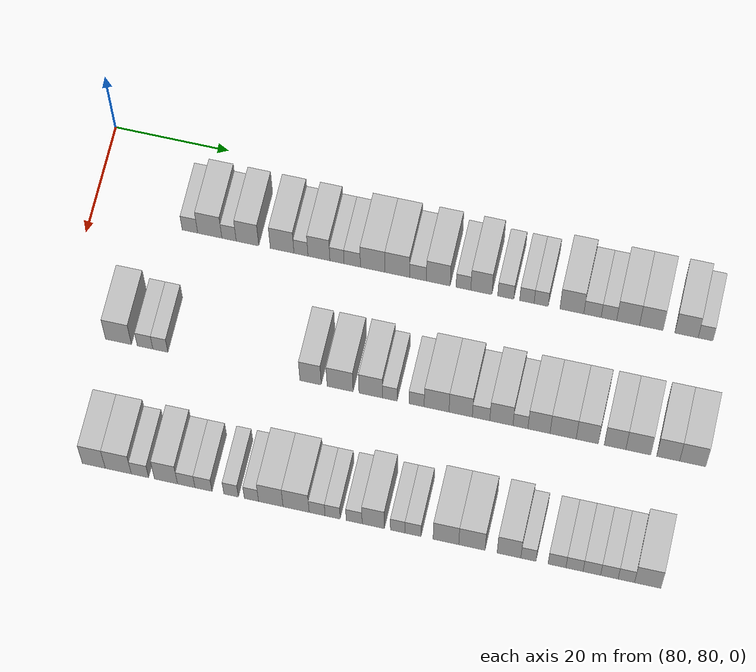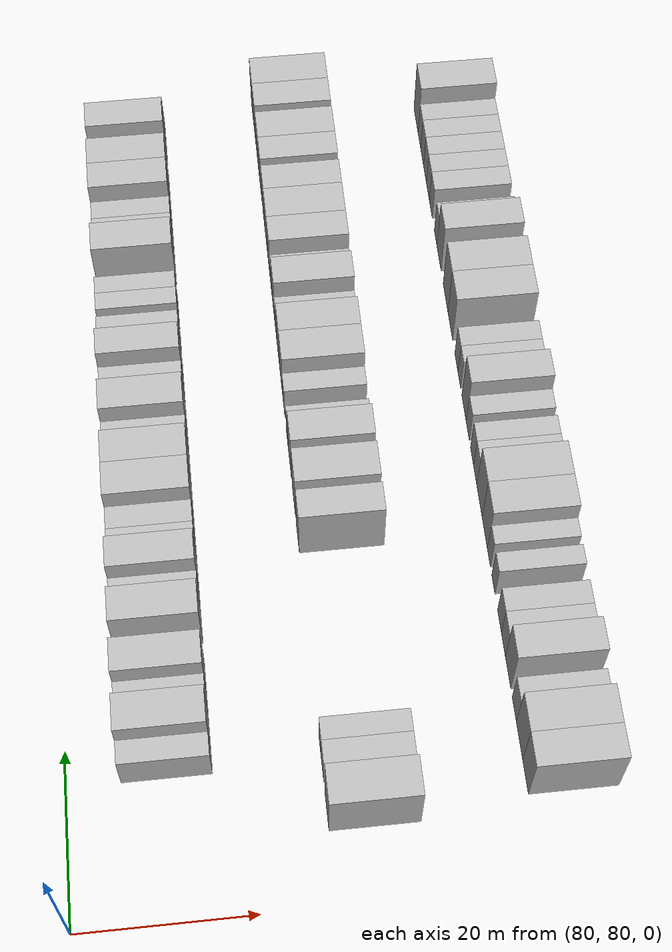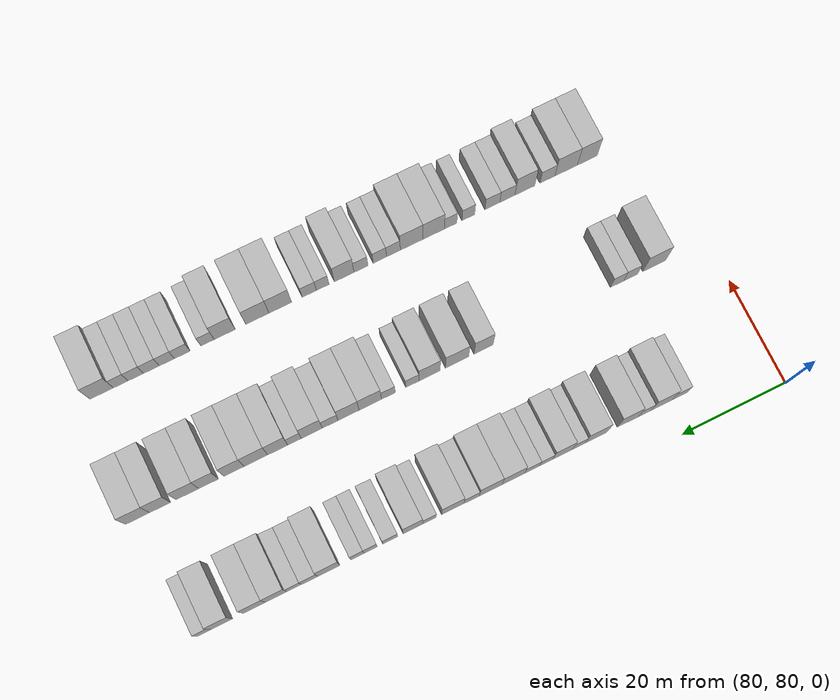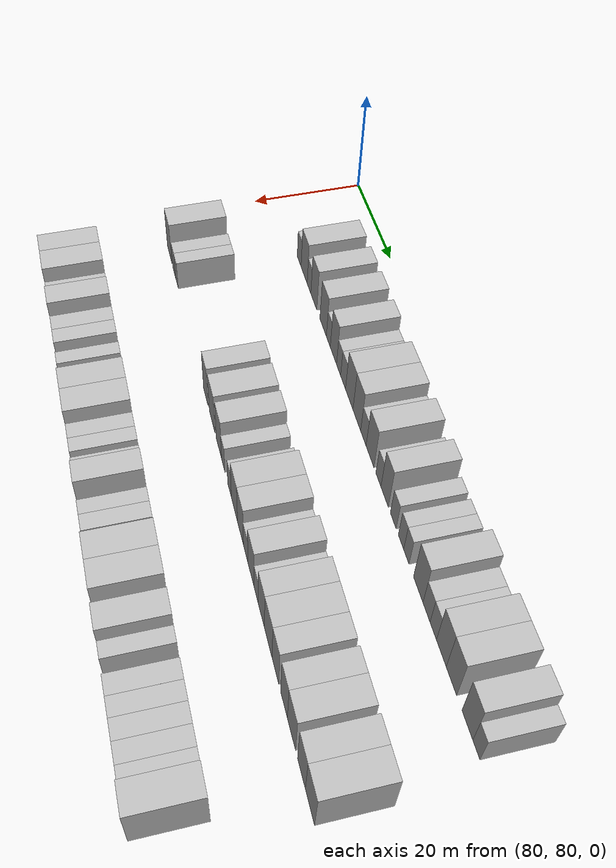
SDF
<sdf version="1.6">
 <world name="default">
  <model name="building_681">
   <static>1</static>
   <pose>91.0000 97.1673 0 0.000000 0.000000 0.000000</pose>
   <link name="link">
    <pose>0 0 3.00 0 0 0</pose>
    <collision name="collision"><geometry><box><size>10.0000 2.6971 6.0000</size></box></geometry></collision>
    <visual name="visual">
     <cast_shadows>0</cast_shadows>
     <geometry><box><size>10.0000 2.6971 6.0000</size></box></geometry>
     <material>
      <script>
       <uri>model://HANNAS_wall/materials/scripts</uri>
       <uri>model://HANNAS_wall/materials/textures</uri>
       <name>vrc/HANNAS_wall</name>
      </script>
     </material>
    </visual>
   </link>
  </model>
  <model name="building_682">
   <static>1</static>
   <pose>91.0000 100.6296 0 0.000000 0.000000 0.000000</pose>
   <link name="link">
    <pose>0 0 4.50 0 0 0</pose>
    <collision name="collision"><geometry><box><size>10.0000 4.2275 9.0000</size></box></geometry></collision>
    <visual name="visual">
     <cast_shadows>0</cast_shadows>
     <geometry><box><size>10.0000 4.2275 9.0000</size></box></geometry>
     <material>
      <script>
       <uri>model://HANNAS_wall/materials/scripts</uri>
       <uri>model://HANNAS_wall/materials/textures</uri>
       <name>vrc/HANNAS_wall</name>
      </script>
     </material>
    </visual>
   </link>
  </model>
  <model name="building_683">
   <static>1</static>
   <pose>91.0000 103.9930 0 0.000000 0.000000 0.000000</pose>
   <link name="link">
    <pose>0 0 3.00 0 0 0</pose>
    <collision name="collision"><geometry><box><size>10.0000 2.4993 6.0000</size></box></geometry></collision>
    <visual name="visual">
     <cast_shadows>0</cast_shadows>
     <geometry><box><size>10.0000 2.4993 6.0000</size></box></geometry>
     <material>
      <script>
       <uri>model://HANNAS_wall/materials/scripts</uri>
       <uri>model://HANNAS_wall/materials/textures</uri>
       <name>vrc/HANNAS_wall</name>
      </script>
     </material>
    </visual>
   </link>
  </model>
  <model name="building_684">
   <static>1</static>
   <pose>91.0000 107.2085 0 0.000000 0.000000 0.000000</pose>
   <link name="link">
    <pose>0 0 4.50 0 0 0</pose>
    <collision name="collision"><geometry><box><size>10.0000 3.9317 9.0000</size></box></geometry></collision>
    <visual name="visual">
     <cast_shadows>0</cast_shadows>
     <geometry><box><size>10.0000 3.9317 9.0000</size></box></geometry>
     <material>
      <script>
       <uri>model://HANNAS_wall/materials/scripts</uri>
       <uri>model://HANNAS_wall/materials/textures</uri>
       <name>vrc/HANNAS_wall</name>
      </script>
     </material>
    </visual>
   </link>
  </model>
  <model name="building_685">
   <static>1</static>
   <pose>91.0000 113.2324 0 0.000000 0.000000 0.000000</pose>
   <link name="link">
    <pose>0 0 4.50 0 0 0</pose>
    <collision name="collision"><geometry><box><size>10.0000 4.1162 9.0000</size></box></geometry></collision>
    <visual name="visual">
     <cast_shadows>0</cast_shadows>
     <geometry><box><size>10.0000 4.1162 9.0000</size></box></geometry>
     <material>
      <script>
       <uri>model://HANNAS_wall/materials/scripts</uri>
       <uri>model://HANNAS_wall/materials/textures</uri>
       <name>vrc/HANNAS_wall</name>
      </script>
     </material>
    </visual>
   </link>
  </model>
  <model name="building_686">
   <static>1</static>
   <pose>91.0000 116.5045 0 0.000000 0.000000 0.000000</pose>
   <link name="link">
    <pose>0 0 3.00 0 0 0</pose>
    <collision name="collision"><geometry><box><size>10.0000 2.4279 6.0000</size></box></geometry></collision>
    <visual name="visual">
     <cast_shadows>0</cast_shadows>
     <geometry><box><size>10.0000 2.4279 6.0000</size></box></geometry>
     <material>
      <script>
       <uri>model://HANNAS_wall/materials/scripts</uri>
       <uri>model://HANNAS_wall/materials/textures</uri>
       <name>vrc/HANNAS_wall</name>
      </script>
     </material>
    </visual>
   </link>
  </model>
  <model name="building_687">
   <static>1</static>
   <pose>91.0000 119.6185 0 0.000000 0.000000 0.000000</pose>
   <link name="link">
    <pose>0 0 4.50 0 0 0</pose>
    <collision name="collision"><geometry><box><size>10.0000 3.8000 9.0000</size></box></geometry></collision>
    <visual name="visual">
     <cast_shadows>0</cast_shadows>
     <geometry><box><size>10.0000 3.8000 9.0000</size></box></geometry>
     <material>
      <script>
       <uri>model://HANNAS_wall/materials/scripts</uri>
       <uri>model://HANNAS_wall/materials/textures</uri>
       <name>vrc/HANNAS_wall</name>
      </script>
     </material>
    </visual>
   </link>
  </model>
  <model name="building_688">
   <static>1</static>
   <pose>91.0000 122.7454 0 0.000000 0.000000 0.000000</pose>
   <link name="link">
    <pose>0 0 3.00 0 0 0</pose>
    <collision name="collision"><geometry><box><size>10.0000 2.4538 6.0000</size></box></geometry></collision>
    <visual name="visual">
     <cast_shadows>0</cast_shadows>
     <geometry><box><size>10.0000 2.4538 6.0000</size></box></geometry>
     <material>
      <script>
       <uri>model://HANNAS_wall/materials/scripts</uri>
       <uri>model://HANNAS_wall/materials/textures</uri>
       <name>vrc/HANNAS_wall</name>
      </script>
     </material>
    </visual>
   </link>
  </model>
  <model name="building_689">
   <static>1</static>
   <pose>91.0000 125.3891 0 0.000000 0.000000 0.000000</pose>
   <link name="link">
    <pose>0 0 3.00 0 0 0</pose>
    <collision name="collision"><geometry><box><size>10.0000 2.8336 6.0000</size></box></geometry></collision>
    <visual name="visual">
     <cast_shadows>0</cast_shadows>
     <geometry><box><size>10.0000 2.8336 6.0000</size></box></geometry>
     <material>
      <script>
       <uri>model://HANNAS_wall/materials/scripts</uri>
       <uri>model://HANNAS_wall/materials/textures</uri>
       <name>vrc/HANNAS_wall</name>
      </script>
     </material>
    </visual>
   </link>
  </model>
  <model name="building_690">
   <static>1</static>
   <pose>91.0000 128.9304 0 0.000000 0.000000 0.000000</pose>
   <link name="link">
    <pose>0 0 4.50 0 0 0</pose>
    <collision name="collision"><geometry><box><size>10.0000 4.2490 9.0000</size></box></geometry></collision>
    <visual name="visual">
     <cast_shadows>0</cast_shadows>
     <geometry><box><size>10.0000 4.2490 9.0000</size></box></geometry>
     <material>
      <script>
       <uri>model://HANNAS_wall/materials/scripts</uri>
       <uri>model://HANNAS_wall/materials/textures</uri>
       <name>vrc/HANNAS_wall</name>
      </script>
     </material>
    </visual>
   </link>
  </model>
  <model name="building_691">
   <static>1</static>
   <pose>91.0000 133.1773 0 0.000000 0.000000 0.000000</pose>
   <link name="link">
    <pose>0 0 4.50 0 0 0</pose>
    <collision name="collision"><geometry><box><size>10.0000 4.2449 9.0000</size></box></geometry></collision>
    <visual name="visual">
     <cast_shadows>0</cast_shadows>
     <geometry><box><size>10.0000 4.2449 9.0000</size></box></geometry>
     <material>
      <script>
       <uri>model://HANNAS_wall/materials/scripts</uri>
       <uri>model://HANNAS_wall/materials/textures</uri>
       <name>vrc/HANNAS_wall</name>
      </script>
     </material>
    </visual>
   </link>
  </model>
  <model name="building_692">
   <static>1</static>
   <pose>91.0000 136.7504 0 0.000000 0.000000 0.000000</pose>
   <link name="link">
    <pose>0 0 3.00 0 0 0</pose>
    <collision name="collision"><geometry><box><size>10.0000 2.9012 6.0000</size></box></geometry></collision>
    <visual name="visual">
     <cast_shadows>0</cast_shadows>
     <geometry><box><size>10.0000 2.9012 6.0000</size></box></geometry>
     <material>
      <script>
       <uri>model://HANNAS_wall/materials/scripts</uri>
       <uri>model://HANNAS_wall/materials/textures</uri>
       <name>vrc/HANNAS_wall</name>
      </script>
     </material>
    </visual>
   </link>
  </model>
  <model name="building_693">
   <static>1</static>
   <pose>91.0000 140.2597 0 0.000000 0.000000 0.000000</pose>
   <link name="link">
    <pose>0 0 4.50 0 0 0</pose>
    <collision name="collision"><geometry><box><size>10.0000 4.1173 9.0000</size></box></geometry></collision>
    <visual name="visual">
     <cast_shadows>0</cast_shadows>
     <geometry><box><size>10.0000 4.1173 9.0000</size></box></geometry>
     <material>
      <script>
       <uri>model://HANNAS_wall/materials/scripts</uri>
       <uri>model://HANNAS_wall/materials/textures</uri>
       <name>vrc/HANNAS_wall</name>
      </script>
     </material>
    </visual>
   </link>
  </model>
  <model name="building_694">
   <static>1</static>
   <pose>91.0000 144.5866 0 0.000000 0.000000 0.000000</pose>
   <link name="link">
    <pose>0 0 3.00 0 0 0</pose>
    <collision name="collision"><geometry><box><size>10.0000 2.5366 6.0000</size></box></geometry></collision>
    <visual name="visual">
     <cast_shadows>0</cast_shadows>
     <geometry><box><size>10.0000 2.5366 6.0000</size></box></geometry>
     <material>
      <script>
       <uri>model://HANNAS_wall/materials/scripts</uri>
       <uri>model://HANNAS_wall/materials/textures</uri>
       <name>vrc/HANNAS_wall</name>
      </script>
     </material>
    </visual>
   </link>
  </model>
  <model name="building_695">
   <static>1</static>
   <pose>91.0000 147.6717 0 0.000000 0.000000 0.000000</pose>
   <link name="link">
    <pose>0 0 4.50 0 0 0</pose>
    <collision name="collision"><geometry><box><size>10.0000 3.6335 9.0000</size></box></geometry></collision>
    <visual name="visual">
     <cast_shadows>0</cast_shadows>
     <geometry><box><size>10.0000 3.6335 9.0000</size></box></geometry>
     <material>
      <script>
       <uri>model://HANNAS_wall/materials/scripts</uri>
       <uri>model://HANNAS_wall/materials/textures</uri>
       <name>vrc/HANNAS_wall</name>
      </script>
     </material>
    </visual>
   </link>
  </model>
  <model name="building_696">
   <static>1</static>
   <pose>91.0000 151.8724 0 0.000000 0.000000 0.000000</pose>
   <link name="link">
    <pose>0 0 3.00 0 0 0</pose>
    <collision name="collision"><geometry><box><size>10.0000 2.7678 6.0000</size></box></geometry></collision>
    <visual name="visual">
     <cast_shadows>0</cast_shadows>
     <geometry><box><size>10.0000 2.7678 6.0000</size></box></geometry>
     <material>
      <script>
       <uri>model://HANNAS_wall/materials/scripts</uri>
       <uri>model://HANNAS_wall/materials/textures</uri>
       <name>vrc/HANNAS_wall</name>
      </script>
     </material>
    </visual>
   </link>
  </model>
  <model name="building_697">
   <static>1</static>
   <pose>91.0000 155.4901 0 0.000000 0.000000 0.000000</pose>
   <link name="link">
    <pose>0 0 3.00 0 0 0</pose>
    <collision name="collision"><geometry><box><size>10.0000 2.4677 6.0000</size></box></geometry></collision>
    <visual name="visual">
     <cast_shadows>0</cast_shadows>
     <geometry><box><size>10.0000 2.4677 6.0000</size></box></geometry>
     <material>
      <script>
       <uri>model://HANNAS_wall/materials/scripts</uri>
       <uri>model://HANNAS_wall/materials/textures</uri>
       <name>vrc/HANNAS_wall</name>
      </script>
     </material>
    </visual>
   </link>
  </model>
  <model name="building_698">
   <static>1</static>
   <pose>91.0000 157.9396 0 0.000000 0.000000 0.000000</pose>
   <link name="link">
    <pose>0 0 3.00 0 0 0</pose>
    <collision name="collision"><geometry><box><size>10.0000 2.4312 6.0000</size></box></geometry></collision>
    <visual name="visual">
     <cast_shadows>0</cast_shadows>
     <geometry><box><size>10.0000 2.4312 6.0000</size></box></geometry>
     <material>
      <script>
       <uri>model://HANNAS_wall/materials/scripts</uri>
       <uri>model://HANNAS_wall/materials/textures</uri>
       <name>vrc/HANNAS_wall</name>
      </script>
     </material>
    </visual>
   </link>
  </model>
  <model name="building_699">
   <static>1</static>
   <pose>91.0000 163.1990 0 0.000000 0.000000 0.000000</pose>
   <link name="link">
    <pose>0 0 4.50 0 0 0</pose>
    <collision name="collision"><geometry><box><size>10.0000 4.0876 9.0000</size></box></geometry></collision>
    <visual name="visual">
     <cast_shadows>0</cast_shadows>
     <geometry><box><size>10.0000 4.0876 9.0000</size></box></geometry>
     <material>
      <script>
       <uri>model://HANNAS_wall/materials/scripts</uri>
       <uri>model://HANNAS_wall/materials/textures</uri>
       <name>vrc/HANNAS_wall</name>
      </script>
     </material>
    </visual>
   </link>
  </model>
  <model name="building_700">
   <static>1</static>
   <pose>91.0000 166.7301 0 0.000000 0.000000 0.000000</pose>
   <link name="link">
    <pose>0 0 3.00 0 0 0</pose>
    <collision name="collision"><geometry><box><size>10.0000 2.9747 6.0000</size></box></geometry></collision>
    <visual name="visual">
     <cast_shadows>0</cast_shadows>
     <geometry><box><size>10.0000 2.9747 6.0000</size></box></geometry>
     <material>
      <script>
       <uri>model://HANNAS_wall/materials/scripts</uri>
       <uri>model://HANNAS_wall/materials/textures</uri>
       <name>vrc/HANNAS_wall</name>
      </script>
     </material>
    </visual>
   </link>
  </model>
  <model name="building_701">
   <static>1</static>
   <pose>91.0000 169.5385 0 0.000000 0.000000 0.000000</pose>
   <link name="link">
    <pose>0 0 3.00 0 0 0</pose>
    <collision name="collision"><geometry><box><size>10.0000 2.6421 6.0000</size></box></geometry></collision>
    <visual name="visual">
     <cast_shadows>0</cast_shadows>
     <geometry><box><size>10.0000 2.6421 6.0000</size></box></geometry>
     <material>
      <script>
       <uri>model://HANNAS_wall/materials/scripts</uri>
       <uri>model://HANNAS_wall/materials/textures</uri>
       <name>vrc/HANNAS_wall</name>
      </script>
     </material>
    </visual>
   </link>
  </model>
  <model name="building_702">
   <static>1</static>
   <pose>91.0000 172.8160 0 0.000000 0.000000 0.000000</pose>
   <link name="link">
    <pose>0 0 4.50 0 0 0</pose>
    <collision name="collision"><geometry><box><size>10.0000 3.9128 9.0000</size></box></geometry></collision>
    <visual name="visual">
     <cast_shadows>0</cast_shadows>
     <geometry><box><size>10.0000 3.9128 9.0000</size></box></geometry>
     <material>
      <script>
       <uri>model://HANNAS_wall/materials/scripts</uri>
       <uri>model://HANNAS_wall/materials/textures</uri>
       <name>vrc/HANNAS_wall</name>
      </script>
     </material>
    </visual>
   </link>
  </model>
  <model name="building_703">
   <static>1</static>
   <pose>91.0000 176.7772 0 0.000000 0.000000 0.000000</pose>
   <link name="link">
    <pose>0 0 4.50 0 0 0</pose>
    <collision name="collision"><geometry><box><size>10.0000 4.0098 9.0000</size></box></geometry></collision>
    <visual name="visual">
     <cast_shadows>0</cast_shadows>
     <geometry><box><size>10.0000 4.0098 9.0000</size></box></geometry>
     <material>
      <script>
       <uri>model://HANNAS_wall/materials/scripts</uri>
       <uri>model://HANNAS_wall/materials/textures</uri>
       <name>vrc/HANNAS_wall</name>
      </script>
     </material>
    </visual>
   </link>
  </model>
  <model name="building_704">
   <static>1</static>
   <pose>91.0000 182.7636 0 0.000000 0.000000 0.000000</pose>
   <link name="link">
    <pose>0 0 4.50 0 0 0</pose>
    <collision name="collision"><geometry><box><size>10.0000 3.9630 9.0000</size></box></geometry></collision>
    <visual name="visual">
     <cast_shadows>0</cast_shadows>
     <geometry><box><size>10.0000 3.9630 9.0000</size></box></geometry>
     <material>
      <script>
       <uri>model://HANNAS_wall/materials/scripts</uri>
       <uri>model://HANNAS_wall/materials/textures</uri>
       <name>vrc/HANNAS_wall</name>
      </script>
     </material>
    </visual>
   </link>
  </model>
  <model name="building_705">
   <static>1</static>
   <pose>91.0000 186.0091 0 0.000000 0.000000 0.000000</pose>
   <link name="link">
    <pose>0 0 3.00 0 0 0</pose>
    <collision name="collision"><geometry><box><size>10.0000 2.5278 6.0000</size></box></geometry></collision>
    <visual name="visual">
     <cast_shadows>0</cast_shadows>
     <geometry><box><size>10.0000 2.5278 6.0000</size></box></geometry>
     <material>
      <script>
       <uri>model://HANNAS_wall/materials/scripts</uri>
       <uri>model://HANNAS_wall/materials/textures</uri>
       <name>vrc/HANNAS_wall</name>
      </script>
     </material>
    </visual>
   </link>
  </model>
  <model name="building_878">
   <static>1</static>
   <pose>113.0000 90.3977 0 0.000000 0.000000 0.000000</pose>
   <link name="link">
    <pose>0 0 4.50 0 0 0</pose>
    <collision name="collision"><geometry><box><size>10.0000 4.4660 9.0000</size></box></geometry></collision>
    <visual name="visual">
     <cast_shadows>0</cast_shadows>
     <geometry><box><size>10.0000 4.4660 9.0000</size></box></geometry>
     <material>
      <script>
       <uri>model://HANNAS_wall/materials/scripts</uri>
       <uri>model://HANNAS_wall/materials/textures</uri>
       <name>vrc/HANNAS_wall</name>
      </script>
     </material>
    </visual>
   </link>
  </model>
  <model name="building_879">
   <static>1</static>
   <pose>113.0000 94.9738 0 0.000000 0.000000 0.000000</pose>
   <link name="link">
    <pose>0 0 3.00 0 0 0</pose>
    <collision name="collision"><geometry><box><size>10.0000 2.6863 6.0000</size></box></geometry></collision>
    <visual name="visual">
     <cast_shadows>0</cast_shadows>
     <geometry><box><size>10.0000 2.6863 6.0000</size></box></geometry>
     <material>
      <script>
       <uri>model://HANNAS_wall/materials/scripts</uri>
       <uri>model://HANNAS_wall/materials/textures</uri>
       <name>vrc/HANNAS_wall</name>
      </script>
     </material>
    </visual>
   </link>
  </model>
  <model name="building_880">
   <static>1</static>
   <pose>113.0000 97.6101 0 0.000000 0.000000 0.000000</pose>
   <link name="link">
    <pose>0 0 3.00 0 0 0</pose>
    <collision name="collision"><geometry><box><size>10.0000 2.5863 6.0000</size></box></geometry></collision>
    <visual name="visual">
     <cast_shadows>0</cast_shadows>
     <geometry><box><size>10.0000 2.5863 6.0000</size></box></geometry>
     <material>
      <script>
       <uri>model://HANNAS_wall/materials/scripts</uri>
       <uri>model://HANNAS_wall/materials/textures</uri>
       <name>vrc/HANNAS_wall</name>
      </script>
     </material>
    </visual>
   </link>
  </model>
  <model name="building_881">
   <static>1</static>
   <pose>113.0000 123.3736 0 0.000000 0.000000 0.000000</pose>
   <link name="link">
    <pose>0 0 4.50 0 0 0</pose>
    <collision name="collision"><geometry><box><size>10.0000 3.6469 9.0000</size></box></geometry></collision>
    <visual name="visual">
     <cast_shadows>0</cast_shadows>
     <geometry><box><size>10.0000 3.6469 9.0000</size></box></geometry>
     <material>
      <script>
       <uri>model://HANNAS_wall/materials/scripts</uri>
       <uri>model://HANNAS_wall/materials/textures</uri>
       <name>vrc/HANNAS_wall</name>
      </script>
     </material>
    </visual>
   </link>
  </model>
  <model name="building_882">
   <static>1</static>
   <pose>113.0000 128.4154 0 0.000000 0.000000 0.000000</pose>
   <link name="link">
    <pose>0 0 4.50 0 0 0</pose>
    <collision name="collision"><geometry><box><size>10.0000 4.4368 9.0000</size></box></geometry></collision>
    <visual name="visual">
     <cast_shadows>0</cast_shadows>
     <geometry><box><size>10.0000 4.4368 9.0000</size></box></geometry>
     <material>
      <script>
       <uri>model://HANNAS_wall/materials/scripts</uri>
       <uri>model://HANNAS_wall/materials/textures</uri>
       <name>vrc/HANNAS_wall</name>
      </script>
     </material>
    </visual>
   </link>
  </model>
  <model name="building_883">
   <static>1</static>
   <pose>113.0000 133.6285 0 0.000000 0.000000 0.000000</pose>
   <link name="link">
    <pose>0 0 4.50 0 0 0</pose>
    <collision name="collision"><geometry><box><size>10.0000 3.9893 9.0000</size></box></geometry></collision>
    <visual name="visual">
     <cast_shadows>0</cast_shadows>
     <geometry><box><size>10.0000 3.9893 9.0000</size></box></geometry>
     <material>
      <script>
       <uri>model://HANNAS_wall/materials/scripts</uri>
       <uri>model://HANNAS_wall/materials/textures</uri>
       <name>vrc/HANNAS_wall</name>
      </script>
     </material>
    </visual>
   </link>
  </model>
  <model name="building_884">
   <static>1</static>
   <pose>113.0000 136.8746 0 0.000000 0.000000 0.000000</pose>
   <link name="link">
    <pose>0 0 3.00 0 0 0</pose>
    <collision name="collision"><geometry><box><size>10.0000 2.5028 6.0000</size></box></geometry></collision>
    <visual name="visual">
     <cast_shadows>0</cast_shadows>
     <geometry><box><size>10.0000 2.5028 6.0000</size></box></geometry>
     <material>
      <script>
       <uri>model://HANNAS_wall/materials/scripts</uri>
       <uri>model://HANNAS_wall/materials/textures</uri>
       <name>vrc/HANNAS_wall</name>
      </script>
     </material>
    </visual>
   </link>
  </model>
  <model name="building_885">
   <static>1</static>
   <pose>113.0000 141.4203 0 0.000000 0.000000 0.000000</pose>
   <link name="link">
    <pose>0 0 3.00 0 0 0</pose>
    <collision name="collision"><geometry><box><size>10.0000 2.5886 6.0000</size></box></geometry></collision>
    <visual name="visual">
     <cast_shadows>0</cast_shadows>
     <geometry><box><size>10.0000 2.5886 6.0000</size></box></geometry>
     <material>
      <script>
       <uri>model://HANNAS_wall/materials/scripts</uri>
       <uri>model://HANNAS_wall/materials/textures</uri>
       <name>vrc/HANNAS_wall</name>
      </script>
     </material>
    </visual>
   </link>
  </model>
  <model name="building_886">
   <static>1</static>
   <pose>113.0000 144.8231 0 0.000000 0.000000 0.000000</pose>
   <link name="link">
    <pose>0 0 4.50 0 0 0</pose>
    <collision name="collision"><geometry><box><size>10.0000 4.2169 9.0000</size></box></geometry></collision>
    <visual name="visual">
     <cast_shadows>0</cast_shadows>
     <geometry><box><size>10.0000 4.2169 9.0000</size></box></geometry>
     <material>
      <script>
       <uri>model://HANNAS_wall/materials/scripts</uri>
       <uri>model://HANNAS_wall/materials/textures</uri>
       <name>vrc/HANNAS_wall</name>
      </script>
     </material>
    </visual>
   </link>
  </model>
  <model name="building_887">
   <static>1</static>
   <pose>113.0000 148.9057 0 0.000000 0.000000 0.000000</pose>
   <link name="link">
    <pose>0 0 4.50 0 0 0</pose>
    <collision name="collision"><geometry><box><size>10.0000 3.9484 9.0000</size></box></geometry></collision>
    <visual name="visual">
     <cast_shadows>0</cast_shadows>
     <geometry><box><size>10.0000 3.9484 9.0000</size></box></geometry>
     <material>
      <script>
       <uri>model://HANNAS_wall/materials/scripts</uri>
       <uri>model://HANNAS_wall/materials/textures</uri>
       <name>vrc/HANNAS_wall</name>
      </script>
     </material>
    </visual>
   </link>
  </model>
  <model name="building_888">
   <static>1</static>
   <pose>113.0000 152.3565 0 0.000000 0.000000 0.000000</pose>
   <link name="link">
    <pose>0 0 3.00 0 0 0</pose>
    <collision name="collision"><geometry><box><size>10.0000 2.9532 6.0000</size></box></geometry></collision>
    <visual name="visual">
     <cast_shadows>0</cast_shadows>
     <geometry><box><size>10.0000 2.9532 6.0000</size></box></geometry>
     <material>
      <script>
       <uri>model://HANNAS_wall/materials/scripts</uri>
       <uri>model://HANNAS_wall/materials/textures</uri>
       <name>vrc/HANNAS_wall</name>
      </script>
     </material>
    </visual>
   </link>
  </model>
  <model name="building_889">
   <static>1</static>
   <pose>113.0000 155.7936 0 0.000000 0.000000 0.000000</pose>
   <link name="link">
    <pose>0 0 4.50 0 0 0</pose>
    <collision name="collision"><geometry><box><size>10.0000 3.9208 9.0000</size></box></geometry></collision>
    <visual name="visual">
     <cast_shadows>0</cast_shadows>
     <geometry><box><size>10.0000 3.9208 9.0000</size></box></geometry>
     <material>
      <script>
       <uri>model://HANNAS_wall/materials/scripts</uri>
       <uri>model://HANNAS_wall/materials/textures</uri>
       <name>vrc/HANNAS_wall</name>
      </script>
     </material>
    </visual>
   </link>
  </model>
  <model name="building_890">
   <static>1</static>
   <pose>113.0000 159.0167 0 0.000000 0.000000 0.000000</pose>
   <link name="link">
    <pose>0 0 3.00 0 0 0</pose>
    <collision name="collision"><geometry><box><size>10.0000 2.5255 6.0000</size></box></geometry></collision>
    <visual name="visual">
     <cast_shadows>0</cast_shadows>
     <geometry><box><size>10.0000 2.5255 6.0000</size></box></geometry>
     <material>
      <script>
       <uri>model://HANNAS_wall/materials/scripts</uri>
       <uri>model://HANNAS_wall/materials/textures</uri>
       <name>vrc/HANNAS_wall</name>
      </script>
     </material>
    </visual>
   </link>
  </model>
  <model name="building_891">
   <static>1</static>
   <pose>113.0000 162.1470 0 0.000000 0.000000 0.000000</pose>
   <link name="link">
    <pose>0 0 4.50 0 0 0</pose>
    <collision name="collision"><geometry><box><size>10.0000 3.7350 9.0000</size></box></geometry></collision>
    <visual name="visual">
     <cast_shadows>0</cast_shadows>
     <geometry><box><size>10.0000 3.7350 9.0000</size></box></geometry>
     <material>
      <script>
       <uri>model://HANNAS_wall/materials/scripts</uri>
       <uri>model://HANNAS_wall/materials/textures</uri>
       <name>vrc/HANNAS_wall</name>
      </script>
     </material>
    </visual>
   </link>
  </model>
  <model name="building_892">
   <static>1</static>
   <pose>113.0000 166.2227 0 0.000000 0.000000 0.000000</pose>
   <link name="link">
    <pose>0 0 4.50 0 0 0</pose>
    <collision name="collision"><geometry><box><size>10.0000 4.4165 9.0000</size></box></geometry></collision>
    <visual name="visual">
     <cast_shadows>0</cast_shadows>
     <geometry><box><size>10.0000 4.4165 9.0000</size></box></geometry>
     <material>
      <script>
       <uri>model://HANNAS_wall/materials/scripts</uri>
       <uri>model://HANNAS_wall/materials/textures</uri>
       <name>vrc/HANNAS_wall</name>
      </script>
     </material>
    </visual>
   </link>
  </model>
  <model name="building_893">
   <static>1</static>
   <pose>113.0000 170.2916 0 0.000000 0.000000 0.000000</pose>
   <link name="link">
    <pose>0 0 4.50 0 0 0</pose>
    <collision name="collision"><geometry><box><size>10.0000 3.7214 9.0000</size></box></geometry></collision>
    <visual name="visual">
     <cast_shadows>0</cast_shadows>
     <geometry><box><size>10.0000 3.7214 9.0000</size></box></geometry>
     <material>
      <script>
       <uri>model://HANNAS_wall/materials/scripts</uri>
       <uri>model://HANNAS_wall/materials/textures</uri>
       <name>vrc/HANNAS_wall</name>
      </script>
     </material>
    </visual>
   </link>
  </model>
  <model name="building_894">
   <static>1</static>
   <pose>113.0000 174.9665 0 0.000000 0.000000 0.000000</pose>
   <link name="link">
    <pose>0 0 4.50 0 0 0</pose>
    <collision name="collision"><geometry><box><size>10.0000 3.6283 9.0000</size></box></geometry></collision>
    <visual name="visual">
     <cast_shadows>0</cast_shadows>
     <geometry><box><size>10.0000 3.6283 9.0000</size></box></geometry>
     <material>
      <script>
       <uri>model://HANNAS_wall/materials/scripts</uri>
       <uri>model://HANNAS_wall/materials/textures</uri>
       <name>vrc/HANNAS_wall</name>
      </script>
     </material>
    </visual>
   </link>
  </model>
  <model name="building_895">
   <static>1</static>
   <pose>113.0000 178.8789 0 0.000000 0.000000 0.000000</pose>
   <link name="link">
    <pose>0 0 4.50 0 0 0</pose>
    <collision name="collision"><geometry><box><size>10.0000 4.1967 9.0000</size></box></geometry></collision>
    <visual name="visual">
     <cast_shadows>0</cast_shadows>
     <geometry><box><size>10.0000 4.1967 9.0000</size></box></geometry>
     <material>
      <script>
       <uri>model://HANNAS_wall/materials/scripts</uri>
       <uri>model://HANNAS_wall/materials/textures</uri>
       <name>vrc/HANNAS_wall</name>
      </script>
     </material>
    </visual>
   </link>
  </model>
  <model name="building_896">
   <static>1</static>
   <pose>113.0000 183.8959 0 0.000000 0.000000 0.000000</pose>
   <link name="link">
    <pose>0 0 4.50 0 0 0</pose>
    <collision name="collision"><geometry><box><size>10.0000 3.8372 9.0000</size></box></geometry></collision>
    <visual name="visual">
     <cast_shadows>0</cast_shadows>
     <geometry><box><size>10.0000 3.8372 9.0000</size></box></geometry>
     <material>
      <script>
       <uri>model://HANNAS_wall/materials/scripts</uri>
       <uri>model://HANNAS_wall/materials/textures</uri>
       <name>vrc/HANNAS_wall</name>
      </script>
     </material>
    </visual>
   </link>
  </model>
  <model name="building_897">
   <static>1</static>
   <pose>113.0000 188.0058 0 0.000000 0.000000 0.000000</pose>
   <link name="link">
    <pose>0 0 4.50 0 0 0</pose>
    <collision name="collision"><geometry><box><size>10.0000 4.3827 9.0000</size></box></geometry></collision>
    <visual name="visual">
     <cast_shadows>0</cast_shadows>
     <geometry><box><size>10.0000 4.3827 9.0000</size></box></geometry>
     <material>
      <script>
       <uri>model://HANNAS_wall/materials/scripts</uri>
       <uri>model://HANNAS_wall/materials/textures</uri>
       <name>vrc/HANNAS_wall</name>
      </script>
     </material>
    </visual>
   </link>
  </model>
  <model name="building_1064">
   <static>1</static>
   <pose>135.0000 91.9189 0 0.000000 0.000000 0.000000</pose>
   <link name="link">
    <pose>0 0 4.50 0 0 0</pose>
    <collision name="collision"><geometry><box><size>10.0000 3.8998 9.0000</size></box></geometry></collision>
    <visual name="visual">
     <cast_shadows>0</cast_shadows>
     <geometry><box><size>10.0000 3.8998 9.0000</size></box></geometry>
     <material>
      <script>
       <uri>model://HANNAS_wall/materials/scripts</uri>
       <uri>model://HANNAS_wall/materials/textures</uri>
       <name>vrc/HANNAS_wall</name>
      </script>
     </material>
    </visual>
   </link>
  </model>
  <model name="building_1065">
   <static>1</static>
   <pose>135.0000 96.0782 0 0.000000 0.000000 0.000000</pose>
   <link name="link">
    <pose>0 0 4.50 0 0 0</pose>
    <collision name="collision"><geometry><box><size>10.0000 4.4188 9.0000</size></box></geometry></collision>
    <visual name="visual">
     <cast_shadows>0</cast_shadows>
     <geometry><box><size>10.0000 4.4188 9.0000</size></box></geometry>
     <material>
      <script>
       <uri>model://HANNAS_wall/materials/scripts</uri>
       <uri>model://HANNAS_wall/materials/textures</uri>
       <name>vrc/HANNAS_wall</name>
      </script>
     </material>
    </visual>
   </link>
  </model>
  <model name="building_1066">
   <static>1</static>
   <pose>135.0000 99.7553 0 0.000000 0.000000 0.000000</pose>
   <link name="link">
    <pose>0 0 3.00 0 0 0</pose>
    <collision name="collision"><geometry><box><size>10.0000 2.9353 6.0000</size></box></geometry></collision>
    <visual name="visual">
     <cast_shadows>0</cast_shadows>
     <geometry><box><size>10.0000 2.9353 6.0000</size></box></geometry>
     <material>
      <script>
       <uri>model://HANNAS_wall/materials/scripts</uri>
       <uri>model://HANNAS_wall/materials/textures</uri>
       <name>vrc/HANNAS_wall</name>
      </script>
     </material>
    </visual>
   </link>
  </model>
  <model name="building_1067">
   <static>1</static>
   <pose>135.0000 104.1768 0 0.000000 0.000000 0.000000</pose>
   <link name="link">
    <pose>0 0 4.50 0 0 0</pose>
    <collision name="collision"><geometry><box><size>10.0000 3.9076 9.0000</size></box></geometry></collision>
    <visual name="visual">
     <cast_shadows>0</cast_shadows>
     <geometry><box><size>10.0000 3.9076 9.0000</size></box></geometry>
     <material>
      <script>
       <uri>model://HANNAS_wall/materials/scripts</uri>
       <uri>model://HANNAS_wall/materials/textures</uri>
       <name>vrc/HANNAS_wall</name>
      </script>
     </material>
    </visual>
   </link>
  </model>
  <model name="building_1068">
   <static>1</static>
   <pose>135.0000 107.6051 0 0.000000 0.000000 0.000000</pose>
   <link name="link">
    <pose>0 0 3.00 0 0 0</pose>
    <collision name="collision"><geometry><box><size>10.0000 2.9491 6.0000</size></box></geometry></collision>
    <visual name="visual">
     <cast_shadows>0</cast_shadows>
     <geometry><box><size>10.0000 2.9491 6.0000</size></box></geometry>
     <material>
      <script>
       <uri>model://HANNAS_wall/materials/scripts</uri>
       <uri>model://HANNAS_wall/materials/textures</uri>
       <name>vrc/HANNAS_wall</name>
      </script>
     </material>
    </visual>
   </link>
  </model>
  <model name="building_1069">
   <static>1</static>
   <pose>135.0000 110.5194 0 0.000000 0.000000 0.000000</pose>
   <link name="link">
    <pose>0 0 3.00 0 0 0</pose>
    <collision name="collision"><geometry><box><size>10.0000 2.8795 6.0000</size></box></geometry></collision>
    <visual name="visual">
     <cast_shadows>0</cast_shadows>
     <geometry><box><size>10.0000 2.8795 6.0000</size></box></geometry>
     <material>
      <script>
       <uri>model://HANNAS_wall/materials/scripts</uri>
       <uri>model://HANNAS_wall/materials/textures</uri>
       <name>vrc/HANNAS_wall</name>
      </script>
     </material>
    </visual>
   </link>
  </model>
  <model name="building_1070">
   <static>1</static>
   <pose>135.0000 115.1884 0 0.000000 0.000000 0.000000</pose>
   <link name="link">
    <pose>0 0 3.00 0 0 0</pose>
    <collision name="collision"><geometry><box><size>10.0000 2.4584 6.0000</size></box></geometry></collision>
    <visual name="visual">
     <cast_shadows>0</cast_shadows>
     <geometry><box><size>10.0000 2.4584 6.0000</size></box></geometry>
     <material>
      <script>
       <uri>model://HANNAS_wall/materials/scripts</uri>
       <uri>model://HANNAS_wall/materials/textures</uri>
       <name>vrc/HANNAS_wall</name>
      </script>
     </material>
    </visual>
   </link>
  </model>
  <model name="building_1071">
   <static>1</static>
   <pose>135.0000 118.6180 0 0.000000 0.000000 0.000000</pose>
   <link name="link">
    <pose>0 0 3.00 0 0 0</pose>
    <collision name="collision"><geometry><box><size>10.0000 2.4009 6.0000</size></box></geometry></collision>
    <visual name="visual">
     <cast_shadows>0</cast_shadows>
     <geometry><box><size>10.0000 2.4009 6.0000</size></box></geometry>
     <material>
      <script>
       <uri>model://HANNAS_wall/materials/scripts</uri>
       <uri>model://HANNAS_wall/materials/textures</uri>
       <name>vrc/HANNAS_wall</name>
      </script>
     </material>
    </visual>
   </link>
  </model>
  <model name="building_1072">
   <static>1</static>
   <pose>135.0000 121.8812 0 0.000000 0.000000 0.000000</pose>
   <link name="link">
    <pose>0 0 4.50 0 0 0</pose>
    <collision name="collision"><geometry><box><size>10.0000 4.1255 9.0000</size></box></geometry></collision>
    <visual name="visual">
     <cast_shadows>0</cast_shadows>
     <geometry><box><size>10.0000 4.1255 9.0000</size></box></geometry>
     <material>
      <script>
       <uri>model://HANNAS_wall/materials/scripts</uri>
       <uri>model://HANNAS_wall/materials/textures</uri>
       <name>vrc/HANNAS_wall</name>
      </script>
     </material>
    </visual>
   </link>
  </model>
  <model name="building_1073">
   <static>1</static>
   <pose>135.0000 126.1356 0 0.000000 0.000000 0.000000</pose>
   <link name="link">
    <pose>0 0 4.50 0 0 0</pose>
    <collision name="collision"><geometry><box><size>10.0000 4.3834 9.0000</size></box></geometry></collision>
    <visual name="visual">
     <cast_shadows>0</cast_shadows>
     <geometry><box><size>10.0000 4.3834 9.0000</size></box></geometry>
     <material>
      <script>
       <uri>model://HANNAS_wall/materials/scripts</uri>
       <uri>model://HANNAS_wall/materials/textures</uri>
       <name>vrc/HANNAS_wall</name>
      </script>
     </material>
    </visual>
   </link>
  </model>
  <model name="building_1074">
   <static>1</static>
   <pose>135.0000 129.6669 0 0.000000 0.000000 0.000000</pose>
   <link name="link">
    <pose>0 0 3.00 0 0 0</pose>
    <collision name="collision"><geometry><box><size>10.0000 2.6793 6.0000</size></box></geometry></collision>
    <visual name="visual">
     <cast_shadows>0</cast_shadows>
     <geometry><box><size>10.0000 2.6793 6.0000</size></box></geometry>
     <material>
      <script>
       <uri>model://HANNAS_wall/materials/scripts</uri>
       <uri>model://HANNAS_wall/materials/textures</uri>
       <name>vrc/HANNAS_wall</name>
      </script>
     </material>
    </visual>
   </link>
  </model>
  <model name="building_1075">
   <static>1</static>
   <pose>135.0000 132.2787 0 0.000000 0.000000 0.000000</pose>
   <link name="link">
    <pose>0 0 3.00 0 0 0</pose>
    <collision name="collision"><geometry><box><size>10.0000 2.5443 6.0000</size></box></geometry></collision>
    <visual name="visual">
     <cast_shadows>0</cast_shadows>
     <geometry><box><size>10.0000 2.5443 6.0000</size></box></geometry>
     <material>
      <script>
       <uri>model://HANNAS_wall/materials/scripts</uri>
       <uri>model://HANNAS_wall/materials/textures</uri>
       <name>vrc/HANNAS_wall</name>
      </script>
     </material>
    </visual>
   </link>
  </model>
  <model name="building_1076">
   <static>1</static>
   <pose>135.0000 135.8875 0 0.000000 0.000000 0.000000</pose>
   <link name="link">
    <pose>0 0 3.00 0 0 0</pose>
    <collision name="collision"><geometry><box><size>10.0000 2.6733 6.0000</size></box></geometry></collision>
    <visual name="visual">
     <cast_shadows>0</cast_shadows>
     <geometry><box><size>10.0000 2.6733 6.0000</size></box></geometry>
     <material>
      <script>
       <uri>model://HANNAS_wall/materials/scripts</uri>
       <uri>model://HANNAS_wall/materials/textures</uri>
       <name>vrc/HANNAS_wall</name>
      </script>
     </material>
    </visual>
   </link>
  </model>
  <model name="building_1077">
   <static>1</static>
   <pose>135.0000 139.0992 0 0.000000 0.000000 0.000000</pose>
   <link name="link">
    <pose>0 0 4.50 0 0 0</pose>
    <collision name="collision"><geometry><box><size>10.0000 3.7501 9.0000</size></box></geometry></collision>
    <visual name="visual">
     <cast_shadows>0</cast_shadows>
     <geometry><box><size>10.0000 3.7501 9.0000</size></box></geometry>
     <material>
      <script>
       <uri>model://HANNAS_wall/materials/scripts</uri>
       <uri>model://HANNAS_wall/materials/textures</uri>
       <name>vrc/HANNAS_wall</name>
      </script>
     </material>
    </visual>
   </link>
  </model>
  <model name="building_1078">
   <static>1</static>
   <pose>135.0000 143.1861 0 0.000000 0.000000 0.000000</pose>
   <link name="link">
    <pose>0 0 3.00 0 0 0</pose>
    <collision name="collision"><geometry><box><size>10.0000 2.4238 6.0000</size></box></geometry></collision>
    <visual name="visual">
     <cast_shadows>0</cast_shadows>
     <geometry><box><size>10.0000 2.4238 6.0000</size></box></geometry>
     <material>
      <script>
       <uri>model://HANNAS_wall/materials/scripts</uri>
       <uri>model://HANNAS_wall/materials/textures</uri>
       <name>vrc/HANNAS_wall</name>
      </script>
     </material>
    </visual>
   </link>
  </model>
  <model name="building_1079">
   <static>1</static>
   <pose>135.0000 145.7523 0 0.000000 0.000000 0.000000</pose>
   <link name="link">
    <pose>0 0 3.00 0 0 0</pose>
    <collision name="collision"><geometry><box><size>10.0000 2.7086 6.0000</size></box></geometry></collision>
    <visual name="visual">
     <cast_shadows>0</cast_shadows>
     <geometry><box><size>10.0000 2.7086 6.0000</size></box></geometry>
     <material>
      <script>
       <uri>model://HANNAS_wall/materials/scripts</uri>
       <uri>model://HANNAS_wall/materials/textures</uri>
       <name>vrc/HANNAS_wall</name>
      </script>
     </material>
    </visual>
   </link>
  </model>
  <model name="building_1080">
   <static>1</static>
   <pose>135.0000 151.2442 0 0.000000 0.000000 0.000000</pose>
   <link name="link">
    <pose>0 0 4.50 0 0 0</pose>
    <collision name="collision"><geometry><box><size>10.0000 4.2752 9.0000</size></box></geometry></collision>
    <visual name="visual">
     <cast_shadows>0</cast_shadows>
     <geometry><box><size>10.0000 4.2752 9.0000</size></box></geometry>
     <material>
      <script>
       <uri>model://HANNAS_wall/materials/scripts</uri>
       <uri>model://HANNAS_wall/materials/textures</uri>
       <name>vrc/HANNAS_wall</name>
      </script>
     </material>
    </visual>
   </link>
  </model>
  <model name="building_1081">
   <static>1</static>
   <pose>135.0000 155.5823 0 0.000000 0.000000 0.000000</pose>
   <link name="link">
    <pose>0 0 4.50 0 0 0</pose>
    <collision name="collision"><geometry><box><size>10.0000 4.4009 9.0000</size></box></geometry></collision>
    <visual name="visual">
     <cast_shadows>0</cast_shadows>
     <geometry><box><size>10.0000 4.4009 9.0000</size></box></geometry>
     <material>
      <script>
       <uri>model://HANNAS_wall/materials/scripts</uri>
       <uri>model://HANNAS_wall/materials/textures</uri>
       <name>vrc/HANNAS_wall</name>
      </script>
     </material>
    </visual>
   </link>
  </model>
  <model name="building_1082">
   <static>1</static>
   <pose>135.0000 161.7584 0 0.000000 0.000000 0.000000</pose>
   <link name="link">
    <pose>0 0 4.50 0 0 0</pose>
    <collision name="collision"><geometry><box><size>10.0000 3.9512 9.0000</size></box></geometry></collision>
    <visual name="visual">
     <cast_shadows>0</cast_shadows>
     <geometry><box><size>10.0000 3.9512 9.0000</size></box></geometry>
     <material>
      <script>
       <uri>model://HANNAS_wall/materials/scripts</uri>
       <uri>model://HANNAS_wall/materials/textures</uri>
       <name>vrc/HANNAS_wall</name>
      </script>
     </material>
    </visual>
   </link>
  </model>
  <model name="building_1083">
   <static>1</static>
   <pose>135.0000 164.9932 0 0.000000 0.000000 0.000000</pose>
   <link name="link">
    <pose>0 0 3.00 0 0 0</pose>
    <collision name="collision"><geometry><box><size>10.0000 2.5184 6.0000</size></box></geometry></collision>
    <visual name="visual">
     <cast_shadows>0</cast_shadows>
     <geometry><box><size>10.0000 2.5184 6.0000</size></box></geometry>
     <material>
      <script>
       <uri>model://HANNAS_wall/materials/scripts</uri>
       <uri>model://HANNAS_wall/materials/textures</uri>
       <name>vrc/HANNAS_wall</name>
      </script>
     </material>
    </visual>
   </link>
  </model>
  <model name="building_1084">
   <static>1</static>
   <pose>135.0000 169.7323 0 0.000000 0.000000 0.000000</pose>
   <link name="link">
    <pose>0 0 3.00 0 0 0</pose>
    <collision name="collision"><geometry><box><size>10.0000 2.9599 6.0000</size></box></geometry></collision>
    <visual name="visual">
     <cast_shadows>0</cast_shadows>
     <geometry><box><size>10.0000 2.9599 6.0000</size></box></geometry>
     <material>
      <script>
       <uri>model://HANNAS_wall/materials/scripts</uri>
       <uri>model://HANNAS_wall/materials/textures</uri>
       <name>vrc/HANNAS_wall</name>
      </script>
     </material>
    </visual>
   </link>
  </model>
  <model name="building_1085">
   <static>1</static>
   <pose>135.0000 172.6298 0 0.000000 0.000000 0.000000</pose>
   <link name="link">
    <pose>0 0 3.00 0 0 0</pose>
    <collision name="collision"><geometry><box><size>10.0000 2.8350 6.0000</size></box></geometry></collision>
    <visual name="visual">
     <cast_shadows>0</cast_shadows>
     <geometry><box><size>10.0000 2.8350 6.0000</size></box></geometry>
     <material>
      <script>
       <uri>model://HANNAS_wall/materials/scripts</uri>
       <uri>model://HANNAS_wall/materials/textures</uri>
       <name>vrc/HANNAS_wall</name>
      </script>
     </material>
    </visual>
   </link>
  </model>
  <model name="building_1086">
   <static>1</static>
   <pose>135.0000 175.5091 0 0.000000 0.000000 0.000000</pose>
   <link name="link">
    <pose>0 0 3.00 0 0 0</pose>
    <collision name="collision"><geometry><box><size>10.0000 2.9237 6.0000</size></box></geometry></collision>
    <visual name="visual">
     <cast_shadows>0</cast_shadows>
     <geometry><box><size>10.0000 2.9237 6.0000</size></box></geometry>
     <material>
      <script>
       <uri>model://HANNAS_wall/materials/scripts</uri>
       <uri>model://HANNAS_wall/materials/textures</uri>
       <name>vrc/HANNAS_wall</name>
      </script>
     </material>
    </visual>
   </link>
  </model>
  <model name="building_1087">
   <static>1</static>
   <pose>135.0000 178.4181 0 0.000000 0.000000 0.000000</pose>
   <link name="link">
    <pose>0 0 3.00 0 0 0</pose>
    <collision name="collision"><geometry><box><size>10.0000 2.8944 6.0000</size></box></geometry></collision>
    <visual name="visual">
     <cast_shadows>0</cast_shadows>
     <geometry><box><size>10.0000 2.8944 6.0000</size></box></geometry>
     <material>
      <script>
       <uri>model://HANNAS_wall/materials/scripts</uri>
       <uri>model://HANNAS_wall/materials/textures</uri>
       <name>vrc/HANNAS_wall</name>
      </script>
     </material>
    </visual>
   </link>
  </model>
  <model name="building_1088">
   <static>1</static>
   <pose>135.0000 181.2246 0 0.000000 0.000000 0.000000</pose>
   <link name="link">
    <pose>0 0 3.00 0 0 0</pose>
    <collision name="collision"><geometry><box><size>10.0000 2.7186 6.0000</size></box></geometry></collision>
    <visual name="visual">
     <cast_shadows>0</cast_shadows>
     <geometry><box><size>10.0000 2.7186 6.0000</size></box></geometry>
     <material>
      <script>
       <uri>model://HANNAS_wall/materials/scripts</uri>
       <uri>model://HANNAS_wall/materials/textures</uri>
       <name>vrc/HANNAS_wall</name>
      </script>
     </material>
    </visual>
   </link>
  </model>
  <model name="building_1089">
   <static>1</static>
   <pose>135.0000 184.7669 0 0.000000 0.000000 0.000000</pose>
   <link name="link">
    <pose>0 0 4.50 0 0 0</pose>
    <collision name="collision"><geometry><box><size>10.0000 4.3659 9.0000</size></box></geometry></collision>
    <visual name="visual">
     <cast_shadows>0</cast_shadows>
     <geometry><box><size>10.0000 4.3659 9.0000</size></box></geometry>
     <material>
      <script>
       <uri>model://HANNAS_wall/materials/scripts</uri>
       <uri>model://HANNAS_wall/materials/textures</uri>
       <name>vrc/HANNAS_wall</name>
      </script>
     </material>
    </visual>
   </link>
  </model>
 </world>
</sdf>
